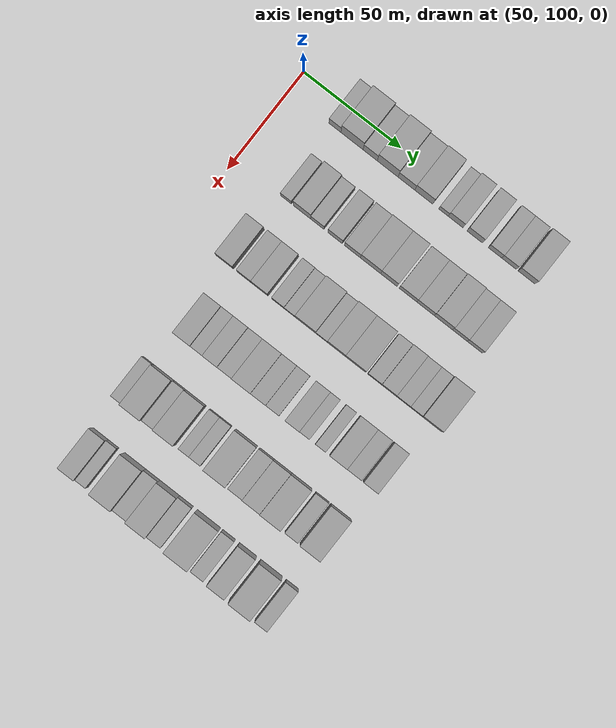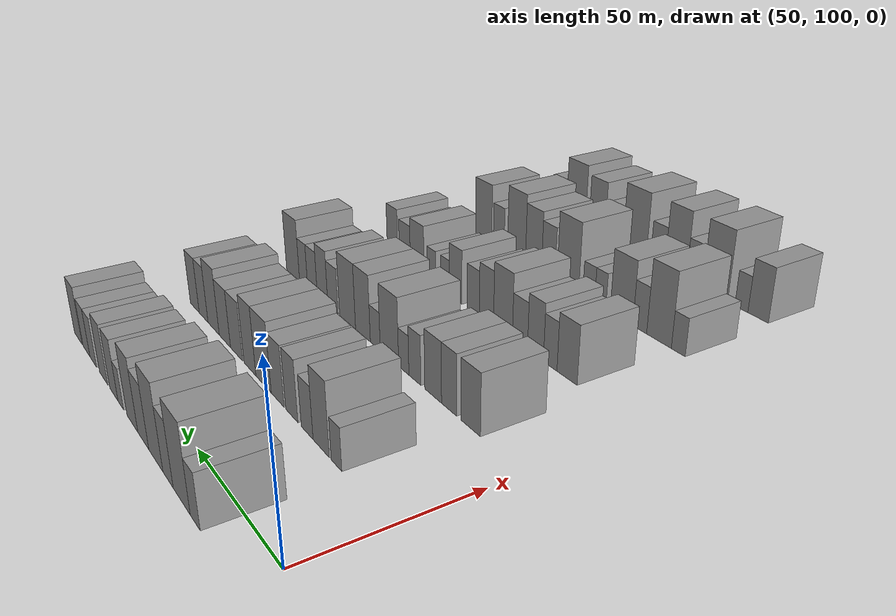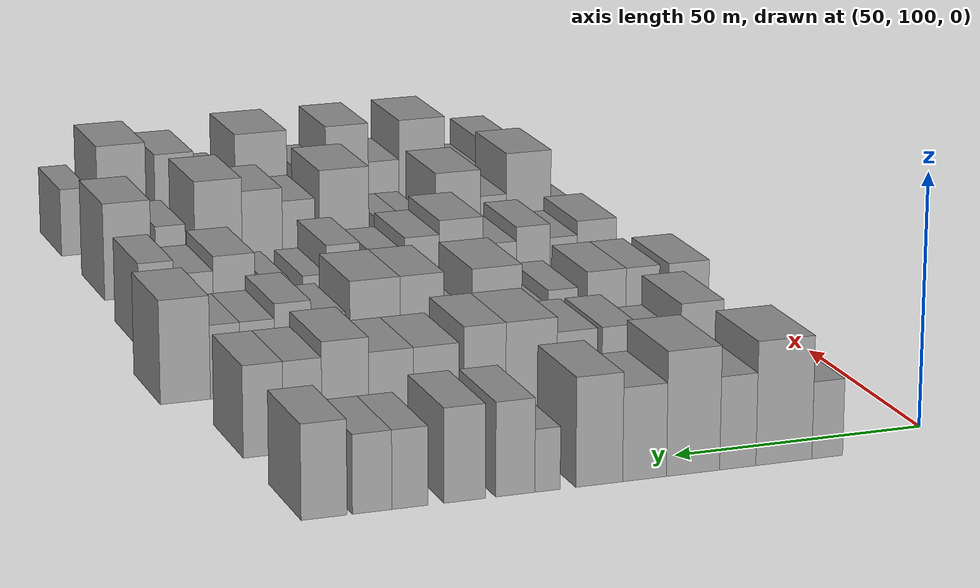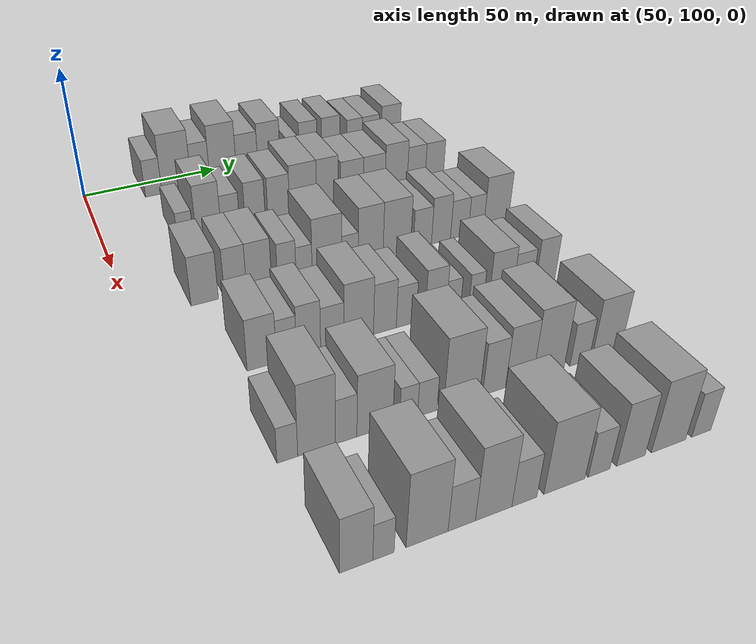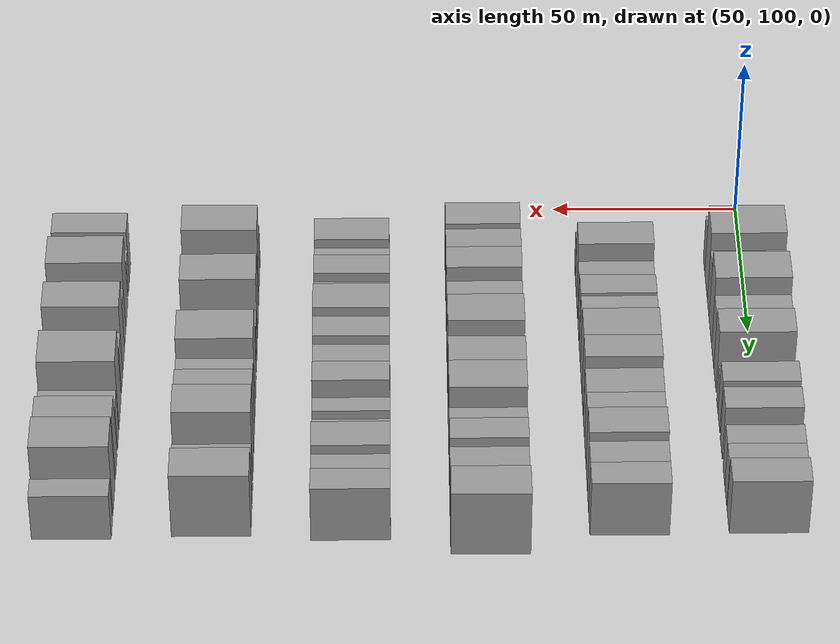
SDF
<sdf version="1.6">
 <world name="default">
  <model name="building_74">
   <static>1</static>
   <pose>50.0000 123.6943 0 0.000000 0.000000 0.000000</pose>
   <link name="link">
    <pose>0 0 7.50 0 0 0</pose>
    <collision name="collision"><geometry><box><size>20.0000 6.2342 15.0000</size></box></geometry></collision>
    <visual name="visual">
     <cast_shadows>0</cast_shadows>
     <geometry><box><size>20.0000 6.2342 15.0000</size></box></geometry>
     <material>
      <script>
       <uri>model://grey_wall/materials/scripts</uri>
       <uri>model://grey_wall/materials/textures</uri>
       <name>vrc/grey_wall</name>
      </script>
     </material>
    </visual>
   </link>
  </model>
  <model name="building_75">
   <static>1</static>
   <pose>50.0000 132.4675 0 0.000000 0.000000 0.000000</pose>
   <link name="link">
    <pose>0 0 12.00 0 0 0</pose>
    <collision name="collision"><geometry><box><size>20.0000 11.3120 24.0000</size></box></geometry></collision>
    <visual name="visual">
     <cast_shadows>0</cast_shadows>
     <geometry><box><size>20.0000 11.3120 24.0000</size></box></geometry>
     <material>
      <script>
       <uri>model://grey_wall/materials/scripts</uri>
       <uri>model://grey_wall/materials/textures</uri>
       <name>vrc/grey_wall</name>
      </script>
     </material>
    </visual>
   </link>
  </model>
  <model name="building_76">
   <static>1</static>
   <pose>50.0000 141.7390 0 0.000000 0.000000 0.000000</pose>
   <link name="link">
    <pose>0 0 9.00 0 0 0</pose>
    <collision name="collision"><geometry><box><size>20.0000 7.2311 18.0000</size></box></geometry></collision>
    <visual name="visual">
     <cast_shadows>0</cast_shadows>
     <geometry><box><size>20.0000 7.2311 18.0000</size></box></geometry>
     <material>
      <script>
       <uri>model://grey_wall/materials/scripts</uri>
       <uri>model://grey_wall/materials/textures</uri>
       <name>vrc/grey_wall</name>
      </script>
     </material>
    </visual>
   </link>
  </model>
  <model name="building_77">
   <static>1</static>
   <pose>50.0000 150.6400 0 0.000000 0.000000 0.000000</pose>
   <link name="link">
    <pose>0 0 12.00 0 0 0</pose>
    <collision name="collision"><geometry><box><size>20.0000 10.5708 24.0000</size></box></geometry></collision>
    <visual name="visual">
     <cast_shadows>0</cast_shadows>
     <geometry><box><size>20.0000 10.5708 24.0000</size></box></geometry>
     <material>
      <script>
       <uri>model://grey_wall/materials/scripts</uri>
       <uri>model://grey_wall/materials/textures</uri>
       <name>vrc/grey_wall</name>
      </script>
     </material>
    </visual>
   </link>
  </model>
  <model name="building_78">
   <static>1</static>
   <pose>50.0000 160.2288 0 0.000000 0.000000 0.000000</pose>
   <link name="link">
    <pose>0 0 9.00 0 0 0</pose>
    <collision name="collision"><geometry><box><size>20.0000 8.6067 18.0000</size></box></geometry></collision>
    <visual name="visual">
     <cast_shadows>0</cast_shadows>
     <geometry><box><size>20.0000 8.6067 18.0000</size></box></geometry>
     <material>
      <script>
       <uri>model://grey_wall/materials/scripts</uri>
       <uri>model://grey_wall/materials/textures</uri>
       <name>vrc/grey_wall</name>
      </script>
     </material>
    </visual>
   </link>
  </model>
  <model name="building_79">
   <static>1</static>
   <pose>50.0000 169.1018 0 0.000000 0.000000 0.000000</pose>
   <link name="link">
    <pose>0 0 10.50 0 0 0</pose>
    <collision name="collision"><geometry><box><size>20.0000 9.1393 21.0000</size></box></geometry></collision>
    <visual name="visual">
     <cast_shadows>0</cast_shadows>
     <geometry><box><size>20.0000 9.1393 21.0000</size></box></geometry>
     <material>
      <script>
       <uri>model://grey_wall/materials/scripts</uri>
       <uri>model://grey_wall/materials/textures</uri>
       <name>vrc/grey_wall</name>
      </script>
     </material>
    </visual>
   </link>
  </model>
  <model name="building_80">
   <static>1</static>
   <pose>50.0000 179.1270 0 0.000000 0.000000 0.000000</pose>
   <link name="link">
    <pose>0 0 6.00 0 0 0</pose>
    <collision name="collision"><geometry><box><size>20.0000 4.9110 12.0000</size></box></geometry></collision>
    <visual name="visual">
     <cast_shadows>0</cast_shadows>
     <geometry><box><size>20.0000 4.9110 12.0000</size></box></geometry>
     <material>
      <script>
       <uri>model://grey_wall/materials/scripts</uri>
       <uri>model://grey_wall/materials/textures</uri>
       <name>vrc/grey_wall</name>
      </script>
     </material>
    </visual>
   </link>
  </model>
  <model name="building_81">
   <static>1</static>
   <pose>50.0000 185.3414 0 0.000000 0.000000 0.000000</pose>
   <link name="link">
    <pose>0 0 9.00 0 0 0</pose>
    <collision name="collision"><geometry><box><size>20.0000 7.5180 18.0000</size></box></geometry></collision>
    <visual name="visual">
     <cast_shadows>0</cast_shadows>
     <geometry><box><size>20.0000 7.5180 18.0000</size></box></geometry>
     <material>
      <script>
       <uri>model://grey_wall/materials/scripts</uri>
       <uri>model://grey_wall/materials/textures</uri>
       <name>vrc/grey_wall</name>
      </script>
     </material>
    </visual>
   </link>
  </model>
  <model name="building_82">
   <static>1</static>
   <pose>50.0000 195.0467 0 0.000000 0.000000 0.000000</pose>
   <link name="link">
    <pose>0 0 9.00 0 0 0</pose>
    <collision name="collision"><geometry><box><size>20.0000 7.8925 18.0000</size></box></geometry></collision>
    <visual name="visual">
     <cast_shadows>0</cast_shadows>
     <geometry><box><size>20.0000 7.8925 18.0000</size></box></geometry>
     <material>
      <script>
       <uri>model://grey_wall/materials/scripts</uri>
       <uri>model://grey_wall/materials/textures</uri>
       <name>vrc/grey_wall</name>
      </script>
     </material>
    </visual>
   </link>
  </model>
  <model name="building_83">
   <static>1</static>
   <pose>50.0000 205.3990 0 0.000000 0.000000 0.000000</pose>
   <link name="link">
    <pose>0 0 7.50 0 0 0</pose>
    <collision name="collision"><geometry><box><size>20.0000 6.8121 15.0000</size></box></geometry></collision>
    <visual name="visual">
     <cast_shadows>0</cast_shadows>
     <geometry><box><size>20.0000 6.8121 15.0000</size></box></geometry>
     <material>
      <script>
       <uri>model://grey_wall/materials/scripts</uri>
       <uri>model://grey_wall/materials/textures</uri>
       <name>vrc/grey_wall</name>
      </script>
     </material>
    </visual>
   </link>
  </model>
  <model name="building_84">
   <static>1</static>
   <pose>50.0000 212.5013 0 0.000000 0.000000 0.000000</pose>
   <link name="link">
    <pose>0 0 7.50 0 0 0</pose>
    <collision name="collision"><geometry><box><size>20.0000 7.3925 15.0000</size></box></geometry></collision>
    <visual name="visual">
     <cast_shadows>0</cast_shadows>
     <geometry><box><size>20.0000 7.3925 15.0000</size></box></geometry>
     <material>
      <script>
       <uri>model://grey_wall/materials/scripts</uri>
       <uri>model://grey_wall/materials/textures</uri>
       <name>vrc/grey_wall</name>
      </script>
     </material>
    </visual>
   </link>
  </model>
  <model name="building_85">
   <static>1</static>
   <pose>50.0000 221.4630 0 0.000000 0.000000 0.000000</pose>
   <link name="link">
    <pose>0 0 9.00 0 0 0</pose>
    <collision name="collision"><geometry><box><size>20.0000 8.5307 18.0000</size></box></geometry></collision>
    <visual name="visual">
     <cast_shadows>0</cast_shadows>
     <geometry><box><size>20.0000 8.5307 18.0000</size></box></geometry>
     <material>
      <script>
       <uri>model://grey_wall/materials/scripts</uri>
       <uri>model://grey_wall/materials/textures</uri>
       <name>vrc/grey_wall</name>
      </script>
     </material>
    </visual>
   </link>
  </model>
  <model name="building_194">
   <static>1</static>
   <pose>85.0000 126.0958 0 0.000000 0.000000 0.000000</pose>
   <link name="link">
    <pose>0 0 6.00 0 0 0</pose>
    <collision name="collision"><geometry><box><size>20.0000 5.5197 12.0000</size></box></geometry></collision>
    <visual name="visual">
     <cast_shadows>0</cast_shadows>
     <geometry><box><size>20.0000 5.5197 12.0000</size></box></geometry>
     <material>
      <script>
       <uri>model://grey_wall/materials/scripts</uri>
       <uri>model://grey_wall/materials/textures</uri>
       <name>vrc/grey_wall</name>
      </script>
     </material>
    </visual>
   </link>
  </model>
  <model name="building_195">
   <static>1</static>
   <pose>85.0000 134.2991 0 0.000000 0.000000 0.000000</pose>
   <link name="link">
    <pose>0 0 10.50 0 0 0</pose>
    <collision name="collision"><geometry><box><size>20.0000 8.8869 21.0000</size></box></geometry></collision>
    <visual name="visual">
     <cast_shadows>0</cast_shadows>
     <geometry><box><size>20.0000 8.8869 21.0000</size></box></geometry>
     <material>
      <script>
       <uri>model://grey_wall/materials/scripts</uri>
       <uri>model://grey_wall/materials/textures</uri>
       <name>vrc/grey_wall</name>
      </script>
     </material>
    </visual>
   </link>
  </model>
  <model name="building_196">
   <static>1</static>
   <pose>85.0000 142.1187 0 0.000000 0.000000 0.000000</pose>
   <link name="link">
    <pose>0 0 7.50 0 0 0</pose>
    <collision name="collision"><geometry><box><size>20.0000 6.7524 15.0000</size></box></geometry></collision>
    <visual name="visual">
     <cast_shadows>0</cast_shadows>
     <geometry><box><size>20.0000 6.7524 15.0000</size></box></geometry>
     <material>
      <script>
       <uri>model://grey_wall/materials/scripts</uri>
       <uri>model://grey_wall/materials/textures</uri>
       <name>vrc/grey_wall</name>
      </script>
     </material>
    </visual>
   </link>
  </model>
  <model name="building_197">
   <static>1</static>
   <pose>85.0000 151.2002 0 0.000000 0.000000 0.000000</pose>
   <link name="link">
    <pose>0 0 9.00 0 0 0</pose>
    <collision name="collision"><geometry><box><size>20.0000 7.4105 18.0000</size></box></geometry></collision>
    <visual name="visual">
     <cast_shadows>0</cast_shadows>
     <geometry><box><size>20.0000 7.4105 18.0000</size></box></geometry>
     <material>
      <script>
       <uri>model://grey_wall/materials/scripts</uri>
       <uri>model://grey_wall/materials/textures</uri>
       <name>vrc/grey_wall</name>
      </script>
     </material>
    </visual>
   </link>
  </model>
  <model name="building_198">
   <static>1</static>
   <pose>85.0000 159.9874 0 0.000000 0.000000 0.000000</pose>
   <link name="link">
    <pose>0 0 9.00 0 0 0</pose>
    <collision name="collision"><geometry><box><size>20.0000 8.1639 18.0000</size></box></geometry></collision>
    <visual name="visual">
     <cast_shadows>0</cast_shadows>
     <geometry><box><size>20.0000 8.1639 18.0000</size></box></geometry>
     <material>
      <script>
       <uri>model://grey_wall/materials/scripts</uri>
       <uri>model://grey_wall/materials/textures</uri>
       <name>vrc/grey_wall</name>
      </script>
     </material>
    </visual>
   </link>
  </model>
  <model name="building_199">
   <static>1</static>
   <pose>85.0000 169.2278 0 0.000000 0.000000 0.000000</pose>
   <link name="link">
    <pose>0 0 10.50 0 0 0</pose>
    <collision name="collision"><geometry><box><size>20.0000 10.3170 21.0000</size></box></geometry></collision>
    <visual name="visual">
     <cast_shadows>0</cast_shadows>
     <geometry><box><size>20.0000 10.3170 21.0000</size></box></geometry>
     <material>
      <script>
       <uri>model://grey_wall/materials/scripts</uri>
       <uri>model://grey_wall/materials/textures</uri>
       <name>vrc/grey_wall</name>
      </script>
     </material>
    </visual>
   </link>
  </model>
  <model name="building_200">
   <static>1</static>
   <pose>85.0000 178.5947 0 0.000000 0.000000 0.000000</pose>
   <link name="link">
    <pose>0 0 10.50 0 0 0</pose>
    <collision name="collision"><geometry><box><size>20.0000 8.4166 21.0000</size></box></geometry></collision>
    <visual name="visual">
     <cast_shadows>0</cast_shadows>
     <geometry><box><size>20.0000 8.4166 21.0000</size></box></geometry>
     <material>
      <script>
       <uri>model://grey_wall/materials/scripts</uri>
       <uri>model://grey_wall/materials/textures</uri>
       <name>vrc/grey_wall</name>
      </script>
     </material>
    </visual>
   </link>
  </model>
  <model name="building_201">
   <static>1</static>
   <pose>85.0000 188.3005 0 0.000000 0.000000 0.000000</pose>
   <link name="link">
    <pose>0 0 9.00 0 0 0</pose>
    <collision name="collision"><geometry><box><size>20.0000 8.9950 18.0000</size></box></geometry></collision>
    <visual name="visual">
     <cast_shadows>0</cast_shadows>
     <geometry><box><size>20.0000 8.9950 18.0000</size></box></geometry>
     <material>
      <script>
       <uri>model://grey_wall/materials/scripts</uri>
       <uri>model://grey_wall/materials/textures</uri>
       <name>vrc/grey_wall</name>
      </script>
     </material>
    </visual>
   </link>
  </model>
  <model name="building_202">
   <static>1</static>
   <pose>85.0000 197.2170 0 0.000000 0.000000 0.000000</pose>
   <link name="link">
    <pose>0 0 9.00 0 0 0</pose>
    <collision name="collision"><geometry><box><size>20.0000 8.8379 18.0000</size></box></geometry></collision>
    <visual name="visual">
     <cast_shadows>0</cast_shadows>
     <geometry><box><size>20.0000 8.8379 18.0000</size></box></geometry>
     <material>
      <script>
       <uri>model://grey_wall/materials/scripts</uri>
       <uri>model://grey_wall/materials/textures</uri>
       <name>vrc/grey_wall</name>
      </script>
     </material>
    </visual>
   </link>
  </model>
  <model name="building_203">
   <static>1</static>
   <pose>85.0000 206.2393 0 0.000000 0.000000 0.000000</pose>
   <link name="link">
    <pose>0 0 10.50 0 0 0</pose>
    <collision name="collision"><geometry><box><size>20.0000 9.2066 21.0000</size></box></geometry></collision>
    <visual name="visual">
     <cast_shadows>0</cast_shadows>
     <geometry><box><size>20.0000 9.2066 21.0000</size></box></geometry>
     <material>
      <script>
       <uri>model://grey_wall/materials/scripts</uri>
       <uri>model://grey_wall/materials/textures</uri>
       <name>vrc/grey_wall</name>
      </script>
     </material>
    </visual>
   </link>
  </model>
  <model name="building_204">
   <static>1</static>
   <pose>85.0000 214.5995 0 0.000000 0.000000 0.000000</pose>
   <link name="link">
    <pose>0 0 9.00 0 0 0</pose>
    <collision name="collision"><geometry><box><size>20.0000 7.5139 18.0000</size></box></geometry></collision>
    <visual name="visual">
     <cast_shadows>0</cast_shadows>
     <geometry><box><size>20.0000 7.5139 18.0000</size></box></geometry>
     <material>
      <script>
       <uri>model://grey_wall/materials/scripts</uri>
       <uri>model://grey_wall/materials/textures</uri>
       <name>vrc/grey_wall</name>
      </script>
     </material>
    </visual>
   </link>
  </model>
  <model name="building_205">
   <static>1</static>
   <pose>85.0000 222.2515 0 0.000000 0.000000 0.000000</pose>
   <link name="link">
    <pose>0 0 9.00 0 0 0</pose>
    <collision name="collision"><geometry><box><size>20.0000 7.7900 18.0000</size></box></geometry></collision>
    <visual name="visual">
     <cast_shadows>0</cast_shadows>
     <geometry><box><size>20.0000 7.7900 18.0000</size></box></geometry>
     <material>
      <script>
       <uri>model://grey_wall/materials/scripts</uri>
       <uri>model://grey_wall/materials/textures</uri>
       <name>vrc/grey_wall</name>
      </script>
     </material>
    </visual>
   </link>
  </model>
  <model name="building_313">
   <static>1</static>
   <pose>120.0000 122.3812 0 0.000000 0.000000 0.000000</pose>
   <link name="link">
    <pose>0 0 9.00 0 0 0</pose>
    <collision name="collision"><geometry><box><size>20.0000 8.7762 18.0000</size></box></geometry></collision>
    <visual name="visual">
     <cast_shadows>0</cast_shadows>
     <geometry><box><size>20.0000 8.7762 18.0000</size></box></geometry>
     <material>
      <script>
       <uri>model://grey_wall/materials/scripts</uri>
       <uri>model://grey_wall/materials/textures</uri>
       <name>vrc/grey_wall</name>
      </script>
     </material>
    </visual>
   </link>
  </model>
  <model name="building_314">
   <static>1</static>
   <pose>120.0000 132.3808 0 0.000000 0.000000 0.000000</pose>
   <link name="link">
    <pose>0 0 9.00 0 0 0</pose>
    <collision name="collision"><geometry><box><size>20.0000 7.2230 18.0000</size></box></geometry></collision>
    <visual name="visual">
     <cast_shadows>0</cast_shadows>
     <geometry><box><size>20.0000 7.2230 18.0000</size></box></geometry>
     <material>
      <script>
       <uri>model://grey_wall/materials/scripts</uri>
       <uri>model://grey_wall/materials/textures</uri>
       <name>vrc/grey_wall</name>
      </script>
     </material>
    </visual>
   </link>
  </model>
  <model name="building_315">
   <static>1</static>
   <pose>120.0000 140.1751 0 0.000000 0.000000 0.000000</pose>
   <link name="link">
    <pose>0 0 9.00 0 0 0</pose>
    <collision name="collision"><geometry><box><size>20.0000 8.3656 18.0000</size></box></geometry></collision>
    <visual name="visual">
     <cast_shadows>0</cast_shadows>
     <geometry><box><size>20.0000 8.3656 18.0000</size></box></geometry>
     <material>
      <script>
       <uri>model://grey_wall/materials/scripts</uri>
       <uri>model://grey_wall/materials/textures</uri>
       <name>vrc/grey_wall</name>
      </script>
     </material>
    </visual>
   </link>
  </model>
  <model name="building_316">
   <static>1</static>
   <pose>120.0000 149.5132 0 0.000000 0.000000 0.000000</pose>
   <link name="link">
    <pose>0 0 7.50 0 0 0</pose>
    <collision name="collision"><geometry><box><size>20.0000 6.3106 15.0000</size></box></geometry></collision>
    <visual name="visual">
     <cast_shadows>0</cast_shadows>
     <geometry><box><size>20.0000 6.3106 15.0000</size></box></geometry>
     <material>
      <script>
       <uri>model://grey_wall/materials/scripts</uri>
       <uri>model://grey_wall/materials/textures</uri>
       <name>vrc/grey_wall</name>
      </script>
     </material>
    </visual>
   </link>
  </model>
  <model name="building_317">
   <static>1</static>
   <pose>120.0000 155.4567 0 0.000000 0.000000 0.000000</pose>
   <link name="link">
    <pose>0 0 6.00 0 0 0</pose>
    <collision name="collision"><geometry><box><size>20.0000 5.5764 12.0000</size></box></geometry></collision>
    <visual name="visual">
     <cast_shadows>0</cast_shadows>
     <geometry><box><size>20.0000 5.5764 12.0000</size></box></geometry>
     <material>
      <script>
       <uri>model://grey_wall/materials/scripts</uri>
       <uri>model://grey_wall/materials/textures</uri>
       <name>vrc/grey_wall</name>
      </script>
     </material>
    </visual>
   </link>
  </model>
  <model name="building_318">
   <static>1</static>
   <pose>120.0000 163.4691 0 0.000000 0.000000 0.000000</pose>
   <link name="link">
    <pose>0 0 10.50 0 0 0</pose>
    <collision name="collision"><geometry><box><size>20.0000 10.4484 21.0000</size></box></geometry></collision>
    <visual name="visual">
     <cast_shadows>0</cast_shadows>
     <geometry><box><size>20.0000 10.4484 21.0000</size></box></geometry>
     <material>
      <script>
       <uri>model://grey_wall/materials/scripts</uri>
       <uri>model://grey_wall/materials/textures</uri>
       <name>vrc/grey_wall</name>
      </script>
     </material>
    </visual>
   </link>
  </model>
  <model name="building_319">
   <static>1</static>
   <pose>120.0000 171.6309 0 0.000000 0.000000 0.000000</pose>
   <link name="link">
    <pose>0 0 6.00 0 0 0</pose>
    <collision name="collision"><geometry><box><size>20.0000 5.8750 12.0000</size></box></geometry></collision>
    <visual name="visual">
     <cast_shadows>0</cast_shadows>
     <geometry><box><size>20.0000 5.8750 12.0000</size></box></geometry>
     <material>
      <script>
       <uri>model://grey_wall/materials/scripts</uri>
       <uri>model://grey_wall/materials/textures</uri>
       <name>vrc/grey_wall</name>
      </script>
     </material>
    </visual>
   </link>
  </model>
  <model name="building_320">
   <static>1</static>
   <pose>120.0000 179.1390 0 0.000000 0.000000 0.000000</pose>
   <link name="link">
    <pose>0 0 10.50 0 0 0</pose>
    <collision name="collision"><geometry><box><size>20.0000 9.1412 21.0000</size></box></geometry></collision>
    <visual name="visual">
     <cast_shadows>0</cast_shadows>
     <geometry><box><size>20.0000 9.1412 21.0000</size></box></geometry>
     <material>
      <script>
       <uri>model://grey_wall/materials/scripts</uri>
       <uri>model://grey_wall/materials/textures</uri>
       <name>vrc/grey_wall</name>
      </script>
     </material>
    </visual>
   </link>
  </model>
  <model name="building_321">
   <static>1</static>
   <pose>120.0000 188.8757 0 0.000000 0.000000 0.000000</pose>
   <link name="link">
    <pose>0 0 10.50 0 0 0</pose>
    <collision name="collision"><geometry><box><size>20.0000 10.3323 21.0000</size></box></geometry></collision>
    <visual name="visual">
     <cast_shadows>0</cast_shadows>
     <geometry><box><size>20.0000 10.3323 21.0000</size></box></geometry>
     <material>
      <script>
       <uri>model://grey_wall/materials/scripts</uri>
       <uri>model://grey_wall/materials/textures</uri>
       <name>vrc/grey_wall</name>
      </script>
     </material>
    </visual>
   </link>
  </model>
  <model name="building_322">
   <static>1</static>
   <pose>120.0000 198.5365 0 0.000000 0.000000 0.000000</pose>
   <link name="link">
    <pose>0 0 7.50 0 0 0</pose>
    <collision name="collision"><geometry><box><size>20.0000 6.9892 15.0000</size></box></geometry></collision>
    <visual name="visual">
     <cast_shadows>0</cast_shadows>
     <geometry><box><size>20.0000 6.9892 15.0000</size></box></geometry>
     <material>
      <script>
       <uri>model://grey_wall/materials/scripts</uri>
       <uri>model://grey_wall/materials/textures</uri>
       <name>vrc/grey_wall</name>
      </script>
     </material>
    </visual>
   </link>
  </model>
  <model name="building_323">
   <static>1</static>
   <pose>120.0000 205.7284 0 0.000000 0.000000 0.000000</pose>
   <link name="link">
    <pose>0 0 9.00 0 0 0</pose>
    <collision name="collision"><geometry><box><size>20.0000 7.3947 18.0000</size></box></geometry></collision>
    <visual name="visual">
     <cast_shadows>0</cast_shadows>
     <geometry><box><size>20.0000 7.3947 18.0000</size></box></geometry>
     <material>
      <script>
       <uri>model://grey_wall/materials/scripts</uri>
       <uri>model://grey_wall/materials/textures</uri>
       <name>vrc/grey_wall</name>
      </script>
     </material>
    </visual>
   </link>
  </model>
  <model name="building_324">
   <static>1</static>
   <pose>120.0000 212.9376 0 0.000000 0.000000 0.000000</pose>
   <link name="link">
    <pose>0 0 7.50 0 0 0</pose>
    <collision name="collision"><geometry><box><size>20.0000 7.0237 15.0000</size></box></geometry></collision>
    <visual name="visual">
     <cast_shadows>0</cast_shadows>
     <geometry><box><size>20.0000 7.0237 15.0000</size></box></geometry>
     <material>
      <script>
       <uri>model://grey_wall/materials/scripts</uri>
       <uri>model://grey_wall/materials/textures</uri>
       <name>vrc/grey_wall</name>
      </script>
     </material>
    </visual>
   </link>
  </model>
  <model name="building_325">
   <static>1</static>
   <pose>120.0000 219.4889 0 0.000000 0.000000 0.000000</pose>
   <link name="link">
    <pose>0 0 7.50 0 0 0</pose>
    <collision name="collision"><geometry><box><size>20.0000 6.0790 15.0000</size></box></geometry></collision>
    <visual name="visual">
     <cast_shadows>0</cast_shadows>
     <geometry><box><size>20.0000 6.0790 15.0000</size></box></geometry>
     <material>
      <script>
       <uri>model://grey_wall/materials/scripts</uri>
       <uri>model://grey_wall/materials/textures</uri>
       <name>vrc/grey_wall</name>
      </script>
     </material>
    </visual>
   </link>
  </model>
  <model name="building_326">
   <static>1</static>
   <pose>120.0000 227.5560 0 0.000000 0.000000 0.000000</pose>
   <link name="link">
    <pose>0 0 10.50 0 0 0</pose>
    <collision name="collision"><geometry><box><size>20.0000 10.0551 21.0000</size></box></geometry></collision>
    <visual name="visual">
     <cast_shadows>0</cast_shadows>
     <geometry><box><size>20.0000 10.0551 21.0000</size></box></geometry>
     <material>
      <script>
       <uri>model://grey_wall/materials/scripts</uri>
       <uri>model://grey_wall/materials/textures</uri>
       <name>vrc/grey_wall</name>
      </script>
     </material>
    </visual>
   </link>
  </model>
  <model name="building_437">
   <static>1</static>
   <pose>155.0000 128.5616 0 0.000000 0.000000 0.000000</pose>
   <link name="link">
    <pose>0 0 9.00 0 0 0</pose>
    <collision name="collision"><geometry><box><size>20.0000 8.7240 18.0000</size></box></geometry></collision>
    <visual name="visual">
     <cast_shadows>0</cast_shadows>
     <geometry><box><size>20.0000 8.7240 18.0000</size></box></geometry>
     <material>
      <script>
       <uri>model://grey_wall/materials/scripts</uri>
       <uri>model://grey_wall/materials/textures</uri>
       <name>vrc/grey_wall</name>
      </script>
     </material>
    </visual>
   </link>
  </model>
  <model name="building_438">
   <static>1</static>
   <pose>155.0000 135.9818 0 0.000000 0.000000 0.000000</pose>
   <link name="link">
    <pose>0 0 7.50 0 0 0</pose>
    <collision name="collision"><geometry><box><size>20.0000 6.1163 15.0000</size></box></geometry></collision>
    <visual name="visual">
     <cast_shadows>0</cast_shadows>
     <geometry><box><size>20.0000 6.1163 15.0000</size></box></geometry>
     <material>
      <script>
       <uri>model://grey_wall/materials/scripts</uri>
       <uri>model://grey_wall/materials/textures</uri>
       <name>vrc/grey_wall</name>
      </script>
     </material>
    </visual>
   </link>
  </model>
  <model name="building_439">
   <static>1</static>
   <pose>155.0000 142.7665 0 0.000000 0.000000 0.000000</pose>
   <link name="link">
    <pose>0 0 9.00 0 0 0</pose>
    <collision name="collision"><geometry><box><size>20.0000 7.4533 18.0000</size></box></geometry></collision>
    <visual name="visual">
     <cast_shadows>0</cast_shadows>
     <geometry><box><size>20.0000 7.4533 18.0000</size></box></geometry>
     <material>
      <script>
       <uri>model://grey_wall/materials/scripts</uri>
       <uri>model://grey_wall/materials/textures</uri>
       <name>vrc/grey_wall</name>
      </script>
     </material>
    </visual>
   </link>
  </model>
  <model name="building_440">
   <static>1</static>
   <pose>155.0000 150.1705 0 0.000000 0.000000 0.000000</pose>
   <link name="link">
    <pose>0 0 7.50 0 0 0</pose>
    <collision name="collision"><geometry><box><size>20.0000 7.3546 15.0000</size></box></geometry></collision>
    <visual name="visual">
     <cast_shadows>0</cast_shadows>
     <geometry><box><size>20.0000 7.3546 15.0000</size></box></geometry>
     <material>
      <script>
       <uri>model://grey_wall/materials/scripts</uri>
       <uri>model://grey_wall/materials/textures</uri>
       <name>vrc/grey_wall</name>
      </script>
     </material>
    </visual>
   </link>
  </model>
  <model name="building_441">
   <static>1</static>
   <pose>155.0000 158.6174 0 0.000000 0.000000 0.000000</pose>
   <link name="link">
    <pose>0 0 10.50 0 0 0</pose>
    <collision name="collision"><geometry><box><size>20.0000 9.5393 21.0000</size></box></geometry></collision>
    <visual name="visual">
     <cast_shadows>0</cast_shadows>
     <geometry><box><size>20.0000 9.5393 21.0000</size></box></geometry>
     <material>
      <script>
       <uri>model://grey_wall/materials/scripts</uri>
       <uri>model://grey_wall/materials/textures</uri>
       <name>vrc/grey_wall</name>
      </script>
     </material>
    </visual>
   </link>
  </model>
  <model name="building_442">
   <static>1</static>
   <pose>155.0000 167.1602 0 0.000000 0.000000 0.000000</pose>
   <link name="link">
    <pose>0 0 9.00 0 0 0</pose>
    <collision name="collision"><geometry><box><size>20.0000 7.5463 18.0000</size></box></geometry></collision>
    <visual name="visual">
     <cast_shadows>0</cast_shadows>
     <geometry><box><size>20.0000 7.5463 18.0000</size></box></geometry>
     <material>
      <script>
       <uri>model://grey_wall/materials/scripts</uri>
       <uri>model://grey_wall/materials/textures</uri>
       <name>vrc/grey_wall</name>
      </script>
     </material>
    </visual>
   </link>
  </model>
  <model name="building_443">
   <static>1</static>
   <pose>155.0000 174.2709 0 0.000000 0.000000 0.000000</pose>
   <link name="link">
    <pose>0 0 7.50 0 0 0</pose>
    <collision name="collision"><geometry><box><size>20.0000 6.6750 15.0000</size></box></geometry></collision>
    <visual name="visual">
     <cast_shadows>0</cast_shadows>
     <geometry><box><size>20.0000 6.6750 15.0000</size></box></geometry>
     <material>
      <script>
       <uri>model://grey_wall/materials/scripts</uri>
       <uri>model://grey_wall/materials/textures</uri>
       <name>vrc/grey_wall</name>
      </script>
     </material>
    </visual>
   </link>
  </model>
  <model name="building_444">
   <static>1</static>
   <pose>155.0000 184.2248 0 0.000000 0.000000 0.000000</pose>
   <link name="link">
    <pose>0 0 9.00 0 0 0</pose>
    <collision name="collision"><geometry><box><size>20.0000 7.2327 18.0000</size></box></geometry></collision>
    <visual name="visual">
     <cast_shadows>0</cast_shadows>
     <geometry><box><size>20.0000 7.2327 18.0000</size></box></geometry>
     <material>
      <script>
       <uri>model://grey_wall/materials/scripts</uri>
       <uri>model://grey_wall/materials/textures</uri>
       <name>vrc/grey_wall</name>
      </script>
     </material>
    </visual>
   </link>
  </model>
  <model name="building_445">
   <static>1</static>
   <pose>155.0000 190.3733 0 0.000000 0.000000 0.000000</pose>
   <link name="link">
    <pose>0 0 6.00 0 0 0</pose>
    <collision name="collision"><geometry><box><size>20.0000 5.0643 12.0000</size></box></geometry></collision>
    <visual name="visual">
     <cast_shadows>0</cast_shadows>
     <geometry><box><size>20.0000 5.0643 12.0000</size></box></geometry>
     <material>
      <script>
       <uri>model://grey_wall/materials/scripts</uri>
       <uri>model://grey_wall/materials/textures</uri>
       <name>vrc/grey_wall</name>
      </script>
     </material>
    </visual>
   </link>
  </model>
  <model name="building_446">
   <static>1</static>
   <pose>155.0000 198.4944 0 0.000000 0.000000 0.000000</pose>
   <link name="link">
    <pose>0 0 6.00 0 0 0</pose>
    <collision name="collision"><geometry><box><size>20.0000 5.1780 12.0000</size></box></geometry></collision>
    <visual name="visual">
     <cast_shadows>0</cast_shadows>
     <geometry><box><size>20.0000 5.1780 12.0000</size></box></geometry>
     <material>
      <script>
       <uri>model://grey_wall/materials/scripts</uri>
       <uri>model://grey_wall/materials/textures</uri>
       <name>vrc/grey_wall</name>
      </script>
     </material>
    </visual>
   </link>
  </model>
  <model name="building_447">
   <static>1</static>
   <pose>155.0000 207.4693 0 0.000000 0.000000 0.000000</pose>
   <link name="link">
    <pose>0 0 9.00 0 0 0</pose>
    <collision name="collision"><geometry><box><size>20.0000 8.7719 18.0000</size></box></geometry></collision>
    <visual name="visual">
     <cast_shadows>0</cast_shadows>
     <geometry><box><size>20.0000 8.7719 18.0000</size></box></geometry>
     <material>
      <script>
       <uri>model://grey_wall/materials/scripts</uri>
       <uri>model://grey_wall/materials/textures</uri>
       <name>vrc/grey_wall</name>
      </script>
     </material>
    </visual>
   </link>
  </model>
  <model name="building_448">
   <static>1</static>
   <pose>155.0000 215.4840 0 0.000000 0.000000 0.000000</pose>
   <link name="link">
    <pose>0 0 7.50 0 0 0</pose>
    <collision name="collision"><geometry><box><size>20.0000 7.2574 15.0000</size></box></geometry></collision>
    <visual name="visual">
     <cast_shadows>0</cast_shadows>
     <geometry><box><size>20.0000 7.2574 15.0000</size></box></geometry>
     <material>
      <script>
       <uri>model://grey_wall/materials/scripts</uri>
       <uri>model://grey_wall/materials/textures</uri>
       <name>vrc/grey_wall</name>
      </script>
     </material>
    </visual>
   </link>
  </model>
  <model name="building_449">
   <static>1</static>
   <pose>155.0000 223.7620 0 0.000000 0.000000 0.000000</pose>
   <link name="link">
    <pose>0 0 9.00 0 0 0</pose>
    <collision name="collision"><geometry><box><size>20.0000 7.2986 18.0000</size></box></geometry></collision>
    <visual name="visual">
     <cast_shadows>0</cast_shadows>
     <geometry><box><size>20.0000 7.2986 18.0000</size></box></geometry>
     <material>
      <script>
       <uri>model://grey_wall/materials/scripts</uri>
       <uri>model://grey_wall/materials/textures</uri>
       <name>vrc/grey_wall</name>
      </script>
     </material>
    </visual>
   </link>
  </model>
  <model name="building_566">
   <static>1</static>
   <pose>190.0000 122.8201 0 0.000000 0.000000 0.000000</pose>
   <link name="link">
    <pose>0 0 6.00 0 0 0</pose>
    <collision name="collision"><geometry><box><size>20.0000 5.5507 12.0000</size></box></geometry></collision>
    <visual name="visual">
     <cast_shadows>0</cast_shadows>
     <geometry><box><size>20.0000 5.5507 12.0000</size></box></geometry>
     <material>
      <script>
       <uri>model://grey_wall/materials/scripts</uri>
       <uri>model://grey_wall/materials/textures</uri>
       <name>vrc/grey_wall</name>
      </script>
     </material>
    </visual>
   </link>
  </model>
  <model name="building_567">
   <static>1</static>
   <pose>190.0000 130.7303 0 0.000000 0.000000 0.000000</pose>
   <link name="link">
    <pose>0 0 12.00 0 0 0</pose>
    <collision name="collision"><geometry><box><size>20.0000 10.2697 24.0000</size></box></geometry></collision>
    <visual name="visual">
     <cast_shadows>0</cast_shadows>
     <geometry><box><size>20.0000 10.2697 24.0000</size></box></geometry>
     <material>
      <script>
       <uri>model://grey_wall/materials/scripts</uri>
       <uri>model://grey_wall/materials/textures</uri>
       <name>vrc/grey_wall</name>
      </script>
     </material>
    </visual>
   </link>
  </model>
  <model name="building_568">
   <static>1</static>
   <pose>190.0000 138.8683 0 0.000000 0.000000 0.000000</pose>
   <link name="link">
    <pose>0 0 7.50 0 0 0</pose>
    <collision name="collision"><geometry><box><size>20.0000 6.0065 15.0000</size></box></geometry></collision>
    <visual name="visual">
     <cast_shadows>0</cast_shadows>
     <geometry><box><size>20.0000 6.0065 15.0000</size></box></geometry>
     <material>
      <script>
       <uri>model://grey_wall/materials/scripts</uri>
       <uri>model://grey_wall/materials/textures</uri>
       <name>vrc/grey_wall</name>
      </script>
     </material>
    </visual>
   </link>
  </model>
  <model name="building_569">
   <static>1</static>
   <pose>190.0000 146.9949 0 0.000000 0.000000 0.000000</pose>
   <link name="link">
    <pose>0 0 10.50 0 0 0</pose>
    <collision name="collision"><geometry><box><size>20.0000 10.2467 21.0000</size></box></geometry></collision>
    <visual name="visual">
     <cast_shadows>0</cast_shadows>
     <geometry><box><size>20.0000 10.2467 21.0000</size></box></geometry>
     <material>
      <script>
       <uri>model://grey_wall/materials/scripts</uri>
       <uri>model://grey_wall/materials/textures</uri>
       <name>vrc/grey_wall</name>
      </script>
     </material>
    </visual>
   </link>
  </model>
  <model name="building_570">
   <static>1</static>
   <pose>190.0000 156.7725 0 0.000000 0.000000 0.000000</pose>
   <link name="link">
    <pose>0 0 6.00 0 0 0</pose>
    <collision name="collision"><geometry><box><size>20.0000 5.3085 12.0000</size></box></geometry></collision>
    <visual name="visual">
     <cast_shadows>0</cast_shadows>
     <geometry><box><size>20.0000 5.3085 12.0000</size></box></geometry>
     <material>
      <script>
       <uri>model://grey_wall/materials/scripts</uri>
       <uri>model://grey_wall/materials/textures</uri>
       <name>vrc/grey_wall</name>
      </script>
     </material>
    </visual>
   </link>
  </model>
  <model name="building_571">
   <static>1</static>
   <pose>190.0000 162.3410 0 0.000000 0.000000 0.000000</pose>
   <link name="link">
    <pose>0 0 6.00 0 0 0</pose>
    <collision name="collision"><geometry><box><size>20.0000 5.8284 12.0000</size></box></geometry></collision>
    <visual name="visual">
     <cast_shadows>0</cast_shadows>
     <geometry><box><size>20.0000 5.8284 12.0000</size></box></geometry>
     <material>
      <script>
       <uri>model://grey_wall/materials/scripts</uri>
       <uri>model://grey_wall/materials/textures</uri>
       <name>vrc/grey_wall</name>
      </script>
     </material>
    </visual>
   </link>
  </model>
  <model name="building_572">
   <static>1</static>
   <pose>190.0000 172.8094 0 0.000000 0.000000 0.000000</pose>
   <link name="link">
    <pose>0 0 12.00 0 0 0</pose>
    <collision name="collision"><geometry><box><size>20.0000 11.1083 24.0000</size></box></geometry></collision>
    <visual name="visual">
     <cast_shadows>0</cast_shadows>
     <geometry><box><size>20.0000 11.1083 24.0000</size></box></geometry>
     <material>
      <script>
       <uri>model://grey_wall/materials/scripts</uri>
       <uri>model://grey_wall/materials/textures</uri>
       <name>vrc/grey_wall</name>
      </script>
     </material>
    </visual>
   </link>
  </model>
  <model name="building_573">
   <static>1</static>
   <pose>190.0000 182.9887 0 0.000000 0.000000 0.000000</pose>
   <link name="link">
    <pose>0 0 9.00 0 0 0</pose>
    <collision name="collision"><geometry><box><size>20.0000 7.2503 18.0000</size></box></geometry></collision>
    <visual name="visual">
     <cast_shadows>0</cast_shadows>
     <geometry><box><size>20.0000 7.2503 18.0000</size></box></geometry>
     <material>
      <script>
       <uri>model://grey_wall/materials/scripts</uri>
       <uri>model://grey_wall/materials/textures</uri>
       <name>vrc/grey_wall</name>
      </script>
     </material>
    </visual>
   </link>
  </model>
  <model name="building_574">
   <static>1</static>
   <pose>190.0000 191.0852 0 0.000000 0.000000 0.000000</pose>
   <link name="link">
    <pose>0 0 10.50 0 0 0</pose>
    <collision name="collision"><geometry><box><size>20.0000 8.9428 21.0000</size></box></geometry></collision>
    <visual name="visual">
     <cast_shadows>0</cast_shadows>
     <geometry><box><size>20.0000 8.9428 21.0000</size></box></geometry>
     <material>
      <script>
       <uri>model://grey_wall/materials/scripts</uri>
       <uri>model://grey_wall/materials/textures</uri>
       <name>vrc/grey_wall</name>
      </script>
     </material>
    </visual>
   </link>
  </model>
  <model name="building_575">
   <static>1</static>
   <pose>190.0000 200.7558 0 0.000000 0.000000 0.000000</pose>
   <link name="link">
    <pose>0 0 12.00 0 0 0</pose>
    <collision name="collision"><geometry><box><size>20.0000 10.3984 24.0000</size></box></geometry></collision>
    <visual name="visual">
     <cast_shadows>0</cast_shadows>
     <geometry><box><size>20.0000 10.3984 24.0000</size></box></geometry>
     <material>
      <script>
       <uri>model://grey_wall/materials/scripts</uri>
       <uri>model://grey_wall/materials/textures</uri>
       <name>vrc/grey_wall</name>
      </script>
     </material>
    </visual>
   </link>
  </model>
  <model name="building_576">
   <static>1</static>
   <pose>190.0000 211.2502 0 0.000000 0.000000 0.000000</pose>
   <link name="link">
    <pose>0 0 7.50 0 0 0</pose>
    <collision name="collision"><geometry><box><size>20.0000 6.5904 15.0000</size></box></geometry></collision>
    <visual name="visual">
     <cast_shadows>0</cast_shadows>
     <geometry><box><size>20.0000 6.5904 15.0000</size></box></geometry>
     <material>
      <script>
       <uri>model://grey_wall/materials/scripts</uri>
       <uri>model://grey_wall/materials/textures</uri>
       <name>vrc/grey_wall</name>
      </script>
     </material>
    </visual>
   </link>
  </model>
  <model name="building_577">
   <static>1</static>
   <pose>190.0000 220.6597 0 0.000000 0.000000 0.000000</pose>
   <link name="link">
    <pose>0 0 10.50 0 0 0</pose>
    <collision name="collision"><geometry><box><size>20.0000 10.2287 21.0000</size></box></geometry></collision>
    <visual name="visual">
     <cast_shadows>0</cast_shadows>
     <geometry><box><size>20.0000 10.2287 21.0000</size></box></geometry>
     <material>
      <script>
       <uri>model://grey_wall/materials/scripts</uri>
       <uri>model://grey_wall/materials/textures</uri>
       <name>vrc/grey_wall</name>
      </script>
     </material>
    </visual>
   </link>
  </model>
  <model name="building_698">
   <static>1</static>
   <pose>225.0000 125.5775 0 0.000000 0.000000 0.000000</pose>
   <link name="link">
    <pose>0 0 9.00 0 0 0</pose>
    <collision name="collision"><geometry><box><size>20.0000 8.0553 18.0000</size></box></geometry></collision>
    <visual name="visual">
     <cast_shadows>0</cast_shadows>
     <geometry><box><size>20.0000 8.0553 18.0000</size></box></geometry>
     <material>
      <script>
       <uri>model://grey_wall/materials/scripts</uri>
       <uri>model://grey_wall/materials/textures</uri>
       <name>vrc/grey_wall</name>
      </script>
     </material>
    </visual>
   </link>
  </model>
  <model name="building_699">
   <static>1</static>
   <pose>225.0000 132.2556 0 0.000000 0.000000 0.000000</pose>
   <link name="link">
    <pose>0 0 6.00 0 0 0</pose>
    <collision name="collision"><geometry><box><size>20.0000 5.3008 12.0000</size></box></geometry></collision>
    <visual name="visual">
     <cast_shadows>0</cast_shadows>
     <geometry><box><size>20.0000 5.3008 12.0000</size></box></geometry>
     <material>
      <script>
       <uri>model://grey_wall/materials/scripts</uri>
       <uri>model://grey_wall/materials/textures</uri>
       <name>vrc/grey_wall</name>
      </script>
     </material>
    </visual>
   </link>
  </model>
  <model name="building_700">
   <static>1</static>
   <pose>225.0000 143.3082 0 0.000000 0.000000 0.000000</pose>
   <link name="link">
    <pose>0 0 12.00 0 0 0</pose>
    <collision name="collision"><geometry><box><size>20.0000 10.8045 24.0000</size></box></geometry></collision>
    <visual name="visual">
     <cast_shadows>0</cast_shadows>
     <geometry><box><size>20.0000 10.8045 24.0000</size></box></geometry>
     <material>
      <script>
       <uri>model://grey_wall/materials/scripts</uri>
       <uri>model://grey_wall/materials/textures</uri>
       <name>vrc/grey_wall</name>
      </script>
     </material>
    </visual>
   </link>
  </model>
  <model name="building_701">
   <static>1</static>
   <pose>225.0000 152.3308 0 0.000000 0.000000 0.000000</pose>
   <link name="link">
    <pose>0 0 7.50 0 0 0</pose>
    <collision name="collision"><geometry><box><size>20.0000 7.2407 15.0000</size></box></geometry></collision>
    <visual name="visual">
     <cast_shadows>0</cast_shadows>
     <geometry><box><size>20.0000 7.2407 15.0000</size></box></geometry>
     <material>
      <script>
       <uri>model://grey_wall/materials/scripts</uri>
       <uri>model://grey_wall/materials/textures</uri>
       <name>vrc/grey_wall</name>
      </script>
     </material>
    </visual>
   </link>
  </model>
  <model name="building_702">
   <static>1</static>
   <pose>225.0000 160.9489 0 0.000000 0.000000 0.000000</pose>
   <link name="link">
    <pose>0 0 12.00 0 0 0</pose>
    <collision name="collision"><geometry><box><size>20.0000 9.9955 24.0000</size></box></geometry></collision>
    <visual name="visual">
     <cast_shadows>0</cast_shadows>
     <geometry><box><size>20.0000 9.9955 24.0000</size></box></geometry>
     <material>
      <script>
       <uri>model://grey_wall/materials/scripts</uri>
       <uri>model://grey_wall/materials/textures</uri>
       <name>vrc/grey_wall</name>
      </script>
     </material>
    </visual>
   </link>
  </model>
  <model name="building_703">
   <static>1</static>
   <pose>225.0000 169.4402 0 0.000000 0.000000 0.000000</pose>
   <link name="link">
    <pose>0 0 7.50 0 0 0</pose>
    <collision name="collision"><geometry><box><size>20.0000 6.9871 15.0000</size></box></geometry></collision>
    <visual name="visual">
     <cast_shadows>0</cast_shadows>
     <geometry><box><size>20.0000 6.9871 15.0000</size></box></geometry>
     <material>
      <script>
       <uri>model://grey_wall/materials/scripts</uri>
       <uri>model://grey_wall/materials/textures</uri>
       <name>vrc/grey_wall</name>
      </script>
     </material>
    </visual>
   </link>
  </model>
  <model name="building_704">
   <static>1</static>
   <pose>225.0000 180.9091 0 0.000000 0.000000 0.000000</pose>
   <link name="link">
    <pose>0 0 12.00 0 0 0</pose>
    <collision name="collision"><geometry><box><size>20.0000 11.9506 24.0000</size></box></geometry></collision>
    <visual name="visual">
     <cast_shadows>0</cast_shadows>
     <geometry><box><size>20.0000 11.9506 24.0000</size></box></geometry>
     <material>
      <script>
       <uri>model://grey_wall/materials/scripts</uri>
       <uri>model://grey_wall/materials/textures</uri>
       <name>vrc/grey_wall</name>
      </script>
     </material>
    </visual>
   </link>
  </model>
  <model name="building_705">
   <static>1</static>
   <pose>225.0000 191.1396 0 0.000000 0.000000 0.000000</pose>
   <link name="link">
    <pose>0 0 7.50 0 0 0</pose>
    <collision name="collision"><geometry><box><size>20.0000 6.5105 15.0000</size></box></geometry></collision>
    <visual name="visual">
     <cast_shadows>0</cast_shadows>
     <geometry><box><size>20.0000 6.5105 15.0000</size></box></geometry>
     <material>
      <script>
       <uri>model://grey_wall/materials/scripts</uri>
       <uri>model://grey_wall/materials/textures</uri>
       <name>vrc/grey_wall</name>
      </script>
     </material>
    </visual>
   </link>
  </model>
  <model name="building_706">
   <static>1</static>
   <pose>225.0000 200.8143 0 0.000000 0.000000 0.000000</pose>
   <link name="link">
    <pose>0 0 10.50 0 0 0</pose>
    <collision name="collision"><geometry><box><size>20.0000 8.8390 21.0000</size></box></geometry></collision>
    <visual name="visual">
     <cast_shadows>0</cast_shadows>
     <geometry><box><size>20.0000 8.8390 21.0000</size></box></geometry>
     <material>
      <script>
       <uri>model://grey_wall/materials/scripts</uri>
       <uri>model://grey_wall/materials/textures</uri>
       <name>vrc/grey_wall</name>
      </script>
     </material>
    </visual>
   </link>
  </model>
  <model name="building_707">
   <static>1</static>
   <pose>225.0000 212.7343 0 0.000000 0.000000 0.000000</pose>
   <link name="link">
    <pose>0 0 12.00 0 0 0</pose>
    <collision name="collision"><geometry><box><size>20.0000 11.0010 24.0000</size></box></geometry></collision>
    <visual name="visual">
     <cast_shadows>0</cast_shadows>
     <geometry><box><size>20.0000 11.0010 24.0000</size></box></geometry>
     <material>
      <script>
       <uri>model://grey_wall/materials/scripts</uri>
       <uri>model://grey_wall/materials/textures</uri>
       <name>vrc/grey_wall</name>
      </script>
     </material>
    </visual>
   </link>
  </model>
  <model name="building_708">
   <static>1</static>
   <pose>225.0000 223.3896 0 0.000000 0.000000 0.000000</pose>
   <link name="link">
    <pose>0 0 7.50 0 0 0</pose>
    <collision name="collision"><geometry><box><size>20.0000 6.3096 15.0000</size></box></geometry></collision>
    <visual name="visual">
     <cast_shadows>0</cast_shadows>
     <geometry><box><size>20.0000 6.3096 15.0000</size></box></geometry>
     <material>
      <script>
       <uri>model://grey_wall/materials/scripts</uri>
       <uri>model://grey_wall/materials/textures</uri>
       <name>vrc/grey_wall</name>
      </script>
     </material>
    </visual>
   </link>
  </model>
 </world>
</sdf>
